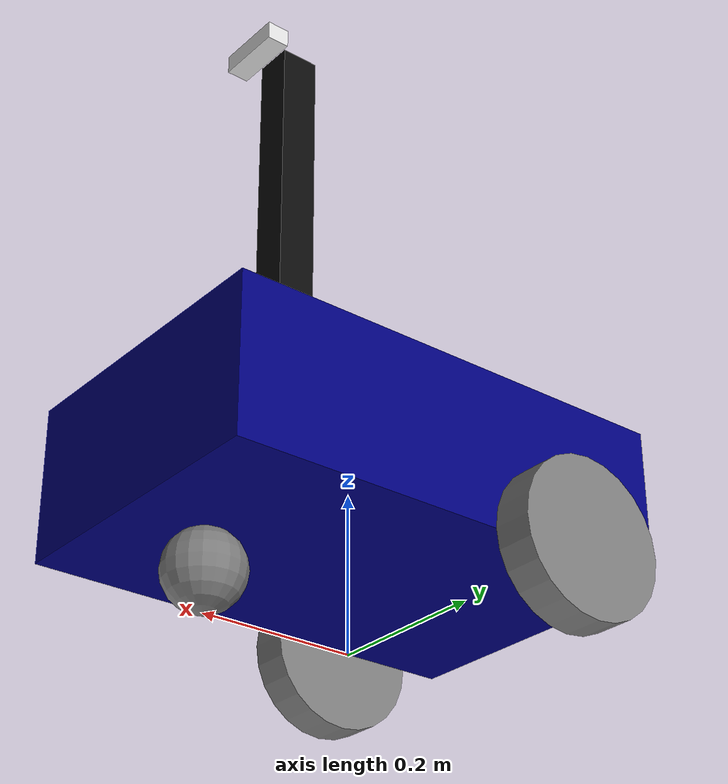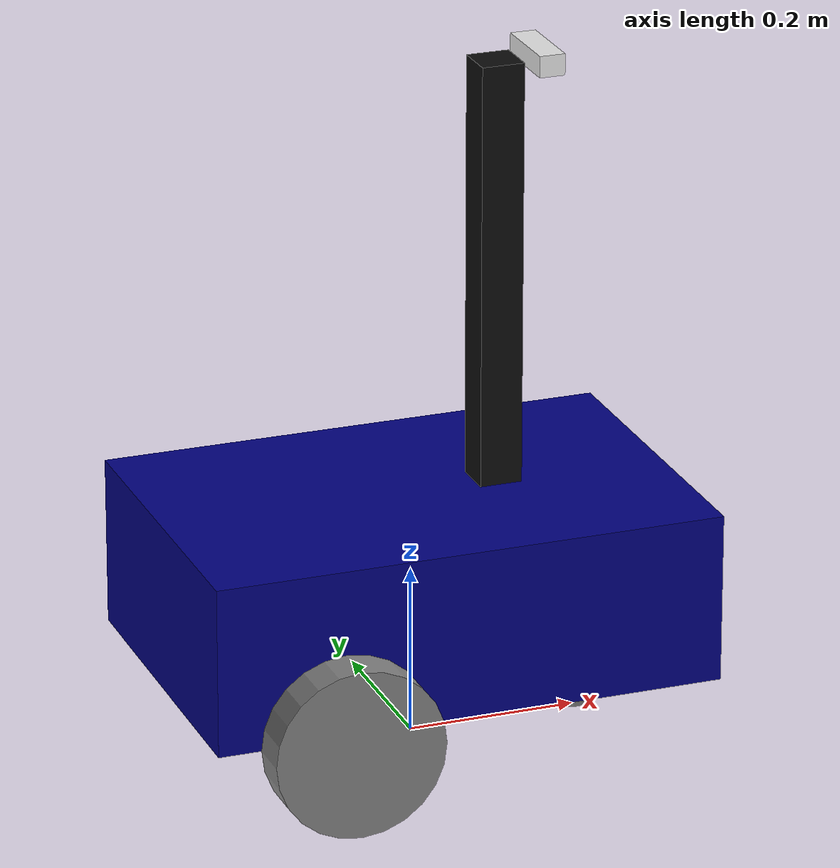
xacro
<?xml version="1.0"?>
<robot xmlns:xacro="http://www.ros.org/wiki/xacro" name="my_robot">

  <!-- stereo:=true adds a D435-like IR stereo pair (needed only for Isaac ROS VSLAM) -->
  <xacro:arg name="stereo" default="false"/>

  <!-- ===== Properties (taken from your URDF) ===== -->
  <xacro:property name="base_length" value="0.6"/>
  <xacro:property name="base_width"  value="0.4"/>
  <xacro:property name="base_height" value="0.2"/>
  <xacro:property name="base_mass"   value="8.0"/>

  <xacro:property name="wheel_radius" value="0.1"/>
  <xacro:property name="wheel_width"  value="0.05"/>
  <xacro:property name="wheel_mass"   value="1.0"/>
  <xacro:property name="wheel_x"      value="-0.15"/>
  <xacro:property name="wheel_y"      value="0.225"/>
  <xacro:property name="wheel_separation" value="${2*wheel_y}"/>

  <xacro:property name="caster_radius" value="0.05"/>
  <xacro:property name="caster_mass"   value="0.3"/>

  <!-- Sensor mast. The report describes a 1.9 m tower; it is kept short here so the
       2-wheel + caster sim base stays stable. Raise mast_height once everything works. -->
  <xacro:property name="mast_height" value="0.5"/>
  <xacro:property name="mast_size"   value="0.05"/>
  <xacro:property name="mast_mass"   value="0.6"/>
  <xacro:property name="mast_x"      value="0.10"/>

  <!-- ===== Materials ===== -->
  <material name="blue"><color rgba="0 0 0.5 1"/></material>
  <material name="grey"><color rgba="0.5 0.5 0.5 1"/></material>
  <material name="black"><color rgba="0.05 0.05 0.05 1"/></material>
  <material name="white"><color rgba="0.9 0.9 0.9 1"/></material>

  <!-- ===== Inertia macro ===== -->
  <xacro:macro name="box_inertial" params="m x y z">
    <inertial>
      <origin xyz="0 0 0" rpy="0 0 0"/>
      <mass value="${m}"/>
      <inertia ixx="${m/12*(y*y+z*z)}" ixy="0" ixz="0"
               iyy="${m/12*(x*x+z*z)}" iyz="0"
               izz="${m/12*(x*x+y*y)}"/>
    </inertial>
  </xacro:macro>

  <!-- ===== Links ===== -->
  <link name="base_footprint"/>

  <link name="base_link">
    <visual>
      <origin xyz="0 0 ${base_height/2}" rpy="0 0 0"/>
      <geometry><box size="${base_length} ${base_width} ${base_height}"/></geometry>
      <material name="blue"/>
    </visual>
    <collision>
      <origin xyz="0 0 ${base_height/2}" rpy="0 0 0"/>
      <geometry><box size="${base_length} ${base_width} ${base_height}"/></geometry>
    </collision>
    <inertial>
      <origin xyz="0 0 ${base_height/2}" rpy="0 0 0"/>
      <mass value="${base_mass}"/>
      <inertia ixx="${base_mass/12*(base_width*base_width+base_height*base_height)}" ixy="0" ixz="0"
               iyy="${base_mass/12*(base_length*base_length+base_height*base_height)}" iyz="0"
               izz="${base_mass/12*(base_length*base_length+base_width*base_width)}"/>
    </inertial>
  </link>

  <!-- Drive wheels -->
  <xacro:macro name="wheel" params="side y_pos">
    <link name="${side}_wheel_link">
      <visual>
        <origin xyz="0 0 0" rpy="${pi/2} 0 0"/>
        <geometry><cylinder radius="${wheel_radius}" length="${wheel_width}"/></geometry>
        <material name="grey"/>
      </visual>
      <collision>
        <origin xyz="0 0 0" rpy="${pi/2} 0 0"/>
        <geometry><cylinder radius="${wheel_radius}" length="${wheel_width}"/></geometry>
      </collision>
      <inertial>
        <origin xyz="0 0 0" rpy="${pi/2} 0 0"/>
        <mass value="${wheel_mass}"/>
        <inertia ixx="${wheel_mass*(3*wheel_radius*wheel_radius+wheel_width*wheel_width)/12}" ixy="0" ixz="0"
                 iyy="${wheel_mass*(3*wheel_radius*wheel_radius+wheel_width*wheel_width)/12}" iyz="0"
                 izz="${wheel_mass*wheel_radius*wheel_radius/2}"/>
      </inertial>
    </link>
    <joint name="base_${side}_wheel_joint" type="continuous">
      <parent link="base_link"/>
      <child link="${side}_wheel_link"/>
      <origin xyz="${wheel_x} ${y_pos} 0" rpy="0 0 0"/>
      <axis xyz="0 1 0"/>
      <dynamics damping="0.01" friction="0.0"/>
    </joint>
  </xacro:macro>

  <xacro:wheel side="right" y_pos="${-wheel_y}"/>
  <xacro:wheel side="left"  y_pos="${wheel_y}"/>

  <!-- Caster -->
  <link name="caster_wheel_link">
    <visual>
      <geometry><sphere radius="${caster_radius}"/></geometry>
      <material name="grey"/>
    </visual>
    <collision>
      <geometry><sphere radius="${caster_radius}"/></geometry>
    </collision>
    <inertial>
      <mass value="${caster_mass}"/>
      <inertia ixx="${2/5*caster_mass*caster_radius*caster_radius}" ixy="0" ixz="0"
               iyy="${2/5*caster_mass*caster_radius*caster_radius}" iyz="0"
               izz="${2/5*caster_mass*caster_radius*caster_radius}"/>
    </inertial>
  </link>

  <!-- Mast -->
  <link name="mast_link">
    <visual>
      <geometry><box size="${mast_size} ${mast_size} ${mast_height}"/></geometry>
      <material name="black"/>
    </visual>
    <collision>
      <geometry><box size="${mast_size} ${mast_size} ${mast_height}"/></geometry>
    </collision>
    <xacro:box_inertial m="${mast_mass}" x="${mast_size}" y="${mast_size}" z="${mast_height}"/>
  </link>

  <!-- Camera (D435-like): camera_link is x-forward, camera_optical_link is z-forward (REP-103) -->
  <link name="camera_link">
    <visual>
      <geometry><box size="0.03 0.09 0.025"/></geometry>
      <material name="white"/>
    </visual>
    <inertial>
      <mass value="0.075"/>
      <inertia ixx="1e-4" ixy="0" ixz="0" iyy="1e-4" iyz="0" izz="1e-4"/>
    </inertial>
  </link>
  <link name="camera_optical_link"/>

  <!-- IMU (ICM-20648 on the OpenCR) -->
  <link name="imu_link"/>

  <!-- ===== Joints ===== -->
  <joint name="base_joint" type="fixed">
    <parent link="base_footprint"/>
    <child link="base_link"/>
    <origin xyz="0 0 ${wheel_radius}" rpy="0 0 0"/>
  </joint>

  <joint name="base_caster_wheel_joint" type="fixed">
    <parent link="base_link"/>
    <child link="caster_wheel_link"/>
    <origin xyz="0.2 0 -0.05" rpy="0 0 0"/>
  </joint>

  <joint name="base_mast_joint" type="fixed">
    <parent link="base_link"/>
    <child link="mast_link"/>
    <origin xyz="${mast_x} 0 ${base_height + mast_height/2}" rpy="0 0 0"/>
  </joint>

  <joint name="mast_camera_joint" type="fixed">
    <parent link="mast_link"/>
    <child link="camera_link"/>
    <origin xyz="0.05 0 ${mast_height/2}" rpy="0 0 0"/>
  </joint>

  <joint name="camera_optical_joint" type="fixed">
    <parent link="camera_link"/>
    <child link="camera_optical_link"/>
    <origin xyz="0 0 0" rpy="${-pi/2} 0 ${-pi/2}"/>
  </joint>

  <joint name="imu_joint" type="fixed">
    <parent link="base_link"/>
    <child link="imu_link"/>
    <origin xyz="0 0 0.1" rpy="0 0 0"/>
  </joint>

  <!-- Optional IR stereo pair (baseline 0.05 m, like the D435) -->
  <xacro:if value="$(arg stereo)">
    <xacro:macro name="ir_cam" params="name y">
      <link name="camera_${name}_link"/>
      <link name="camera_${name}_optical_link"/>
      <joint name="camera_${name}_joint" type="fixed">
        <parent link="camera_link"/>
        <child link="camera_${name}_link"/>
        <origin xyz="0 ${y} 0" rpy="0 0 0"/>
      </joint>
      <joint name="camera_${name}_optical_joint" type="fixed">
        <parent link="camera_${name}_link"/>
        <child link="camera_${name}_optical_link"/>
        <origin xyz="0 0 0" rpy="${-pi/2} 0 ${-pi/2}"/>
      </joint>
    </xacro:macro>
    <xacro:ir_cam name="infra1" y="0.025"/>
    <xacro:ir_cam name="infra2" y="-0.025"/>
  </xacro:if>

  <xacro:include filename="$(find my_robot_sim)/urdf/my_robot_gazebo.xacro"/>

</robot>
